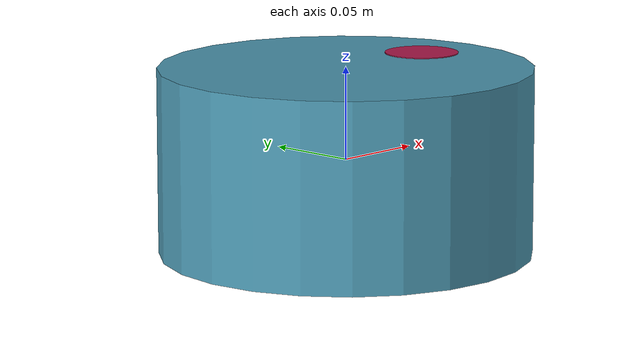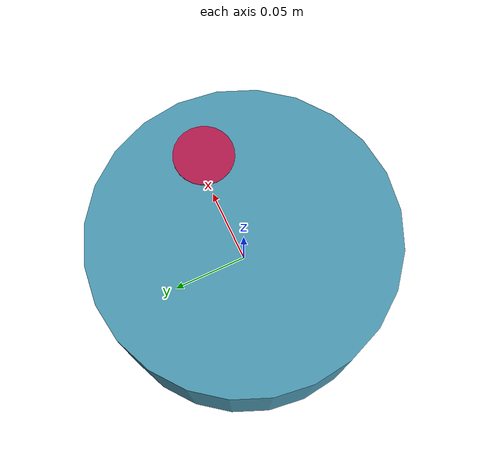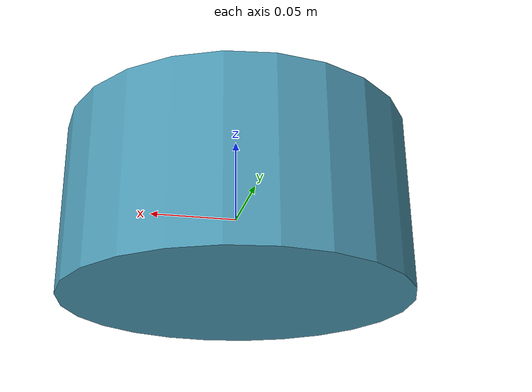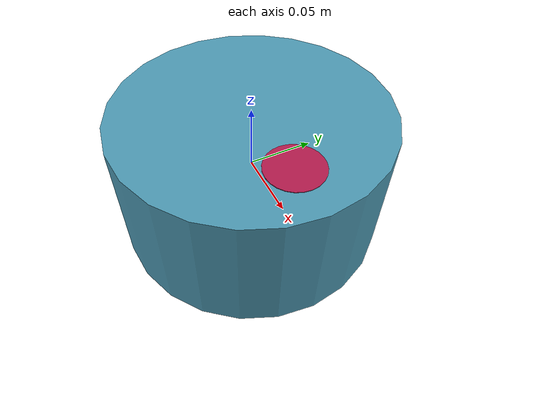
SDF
<?xml version="1.0"?>
<sdf version="1.7">
  <model name="000_my_cylinder">
    <link name="cylinder_base_link">
      <inertial>
        <mass>2.</mass>
        <inertia>
          <ixx>6.667e-3</ixx>
          <ixy>0</ixy>
          <ixz>0</ixz>
          <iyy>6.667e-3</iyy>
          <iyz>0</iyz>
          <izz>0.01</izz>
        </inertia>
      </inertial>
      <visual name="cylinder_visual">
        <pose>0 0 0 0 0 0</pose>
        <geometry>
          <cylinder>
            <radius>0.1</radius>
            <length>0.1</length>
          </cylinder>
        </geometry>
        <material>
          <diffuse> 0.3 0.6 0.7 1.0</diffuse>
        </material>
      </visual>
      <collision name="cylinder_collision">
        <pose>0 0 0 0 0 0</pose>
        <geometry>
          <cylinder>
            <radius>0.1</radius>
            <length>0.09</length>
          </cylinder>
        </geometry>
      </collision>
      <collision name="point_collision1">
        <pose>0.1 0. -0.05 0 0 0 </pose>
        <geometry>
          <sphere>
            <radius>1e-7</radius>
          </sphere>
        </geometry>
      </collision>
      <collision name="point_collision2">
        <pose>0 0.1 -0.05 0 0 0 </pose>
        <geometry>
          <sphere>
            <radius>1e-7</radius>
          </sphere>
        </geometry>
      </collision>
      <collision name="point_collision3">
        <pose>-0.1 0. -0.05 0 0 0 </pose>
        <geometry>
          <sphere>
            <radius>1e-7</radius>
          </sphere>
        </geometry>
      </collision>
      <collision name="point_collision4">
        <pose>0 -0.1 -0.05 0 0 0 </pose>
        <geometry>
          <sphere>
            <radius>1e-7</radius>
          </sphere>
        </geometry>
      </collision>
    </link>

    <!-- Add a link for visual, easy to see when spinning -->
    <link name="marker">
      <visual name="marker">
      <pose> 0.06 0 0.05 0 0 0 </pose>
        <geometry>
          <cylinder>
            <radius> 0.02 </radius>
            <length> 0.001 </length>
            </cylinder>
        </geometry>
        <material>
          <diffuse> 0.7 0.1 0.3 1.0</diffuse>
        </material>
      </visual>
    </link>

    <joint name="joint" type="fixed">
      <parent>cylinder_base_link</parent>
      <child>marker</child>
    </joint>

  </model>
</sdf>
